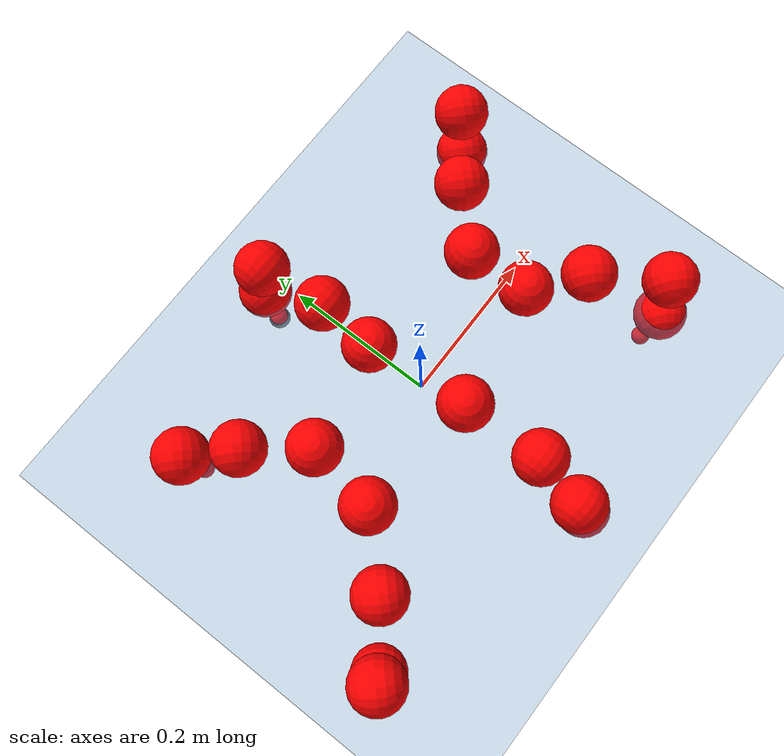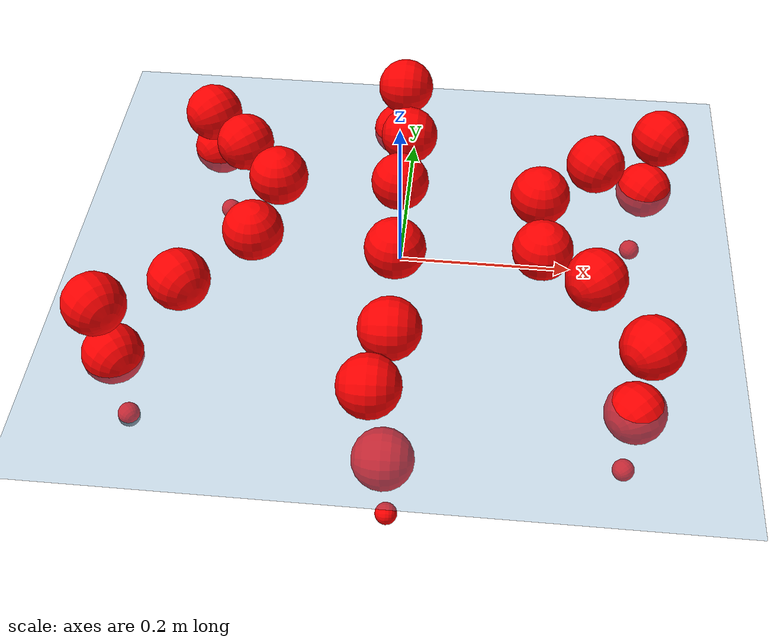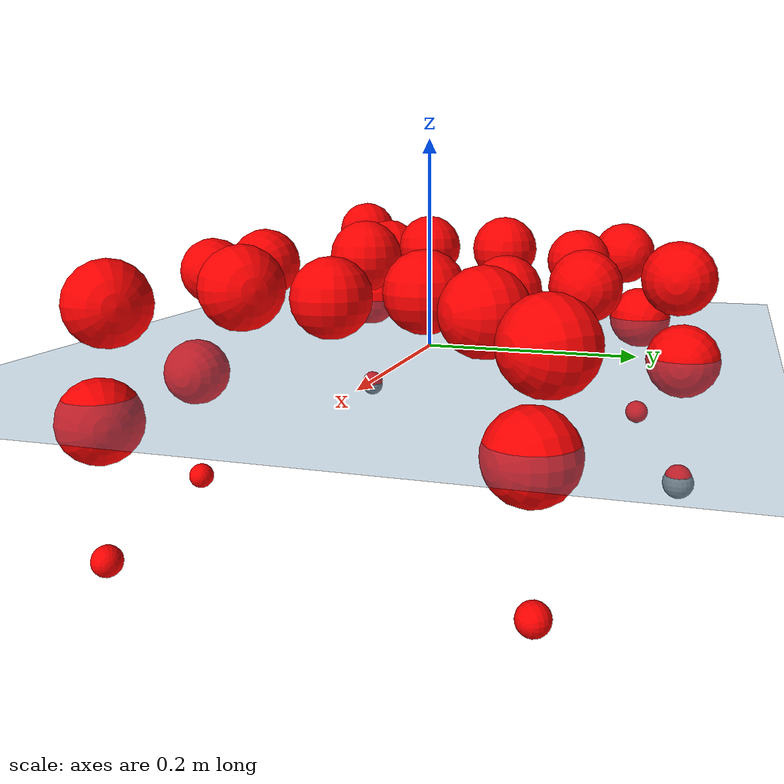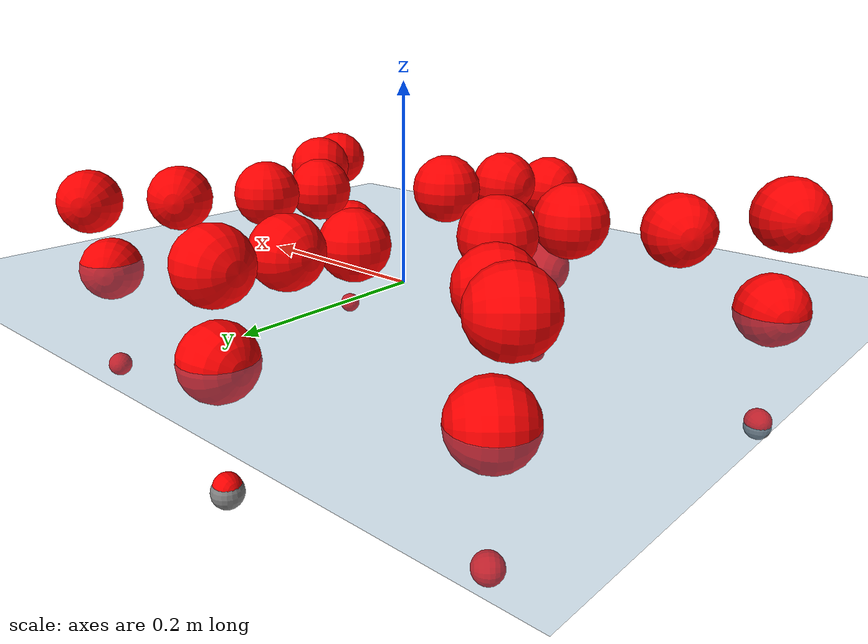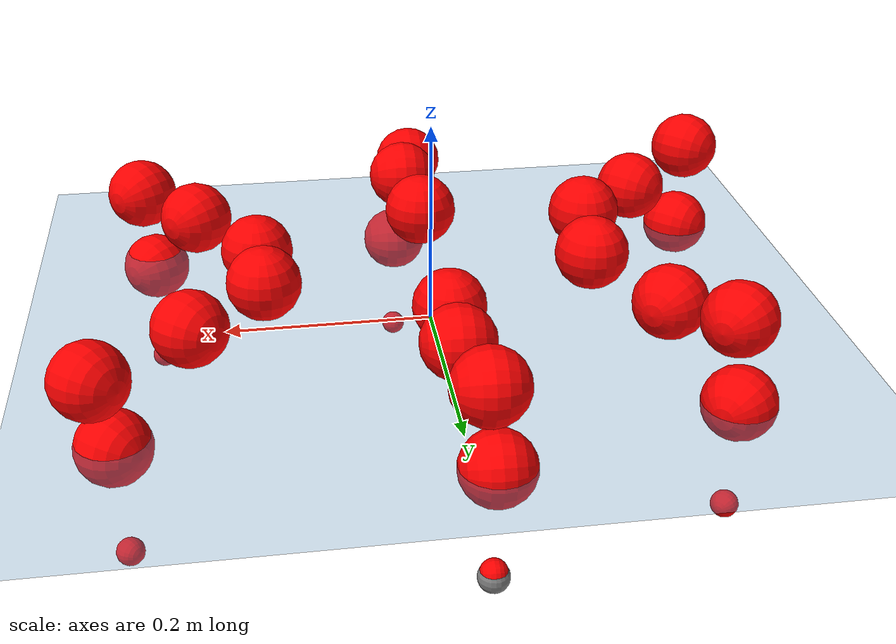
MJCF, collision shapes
<mujoco model="Golem">
  <compiler angle="radian" assetdir="assets" balanceinertia="true" inertiafromgeom="false"/>

  <option timestep="0.005" density="1.2" viscosity="2e-05"/>

  <size nkey="1"/>

  <visual>
    <quality shadowsize="8192"/>
    <map shadowclip="0.5"/>
  </visual>

  <default>
    <default class="/">
      <joint armature="0.01" damping="0.01" frictionloss="0.01"/>
      <geom contype="0" conaffinity="0" group="1" solref="-1000 -80"/>
      <site size="0.01 0.005 0.005" group="5"/>
      <general forcelimited="true" biastype="affine" gainprm="25" biasprm="0 -25 -0.5"/>
      <default class="visual">
        <geom type="mesh" group="2"/>
      </default>
      <default class="collision">
        <geom group="3"/>
      </default>
      <default class="foot">
        <geom size="0.01 0 0" condim="6" group="4" priority="1" solimp="0.015 1 0.01"/>
      </default>
      <default class="reward_collision_sphere">
        <geom group="5" rgba="1 0 0 1"/>
      </default>
    </default>
  </default>

  <asset>
    <texture type="skybox" colorspace="auto" name="//unnamed_texture_0" builtin="gradient" rgb1="0.95 0.95 0.95" rgb2="0.95 0.95 0.95" width="100" height="600"/>
    <texture type="2d" colorspace="auto" name="texplane" builtin="checker" rgb1="0.345 0.575 0.748" rgb2="0.345 0.575 0.748" markrgb="1 1 1" width="512" height="512"/>
    <material name="MatPlane" class="/" texture="texplane" texuniform="true" texrepeat="2 2" specular="0.9"/>
    <mesh name="body" class="/" file="body.stl" scale="0.001 0.001 0.001"/>
    <mesh name="coxa" class="/" file="coxa.stl" scale="0.001 0.001 0.001"/>
    <mesh name="femur" class="/" file="femur.stl" scale="0.001 0.001 0.001"/>
    <mesh name="tibia" class="/" file="tibia.stl" scale="0.001 0.001 0.001"/>
    <mesh name="tarsus" class="/" file="tarsus.stl" scale="0.001 0.001 0.001"/>
  </asset>

  <worldbody>
    <geom name="floor" class="/" size="100 100 0.125" type="plane" group="0" material="MatPlane"/>
    <light name="toplight_shadow" class="/" pos="0 0 5" dir="0.0990148 0.0990148 -0.990148" type="directional" ambient="0.04 0.04 0.04" diffuse="0.55 0.55 0.55" specular="0.12 0.12 0.12"/>
    <light name="toplight_fill" class="/" pos="0 0 5" dir="0.0990148 0.0990148 -0.990148" type="directional" castshadow="false" ambient="0.04 0.04 0.04" diffuse="0.3 0.3 0.3" specular="0.08 0.08 0.08"/>
    <body name="trunk" pos="0.010927 -0.00502369 0.0181256" quat="0.999999 -0.000552534 -0.000473824 -0.0014945">
      <inertial pos="-0.0112391 0.00218153 -0.0168575" quat="0.997535 0.0191665 -0.067121 -0.00720766" mass="1.85242" diaginertia="0.0155907 0.00182629 0.00253442"/>
      <joint name="//unnamed_joint_0" type="free"/>
      <geom name="//unnamed_geom_1" class="/" pos="0 0 0.0505925" quat="1 0 0 0" type="mesh" rgba="0.9 0.9 0.9 1" mesh="body"/>
      <site name="imu" class="/" pos="0.112216 0.0276359 0.0370959" size="0.00866935"/>
      <camera name="track" class="/" pos="0 -1.49847 0" quat="0.707107 0.707107 0 0" mode="trackcom"/>
      <camera name="ego_camera" class="/" pos="0.137938 0 0.0790508" quat="-0.5 -0.5 0.5 0.5"/>
      <body name="coxa_RR" pos="-0.194601 -0.066582 0.0646869" quat="0.384931 -0.00184568 -0.000708797 -0.922943">
        <inertial pos="0.00360993 0.0178902 -0.00584832" quat="0.999329 0.00660476 0.0119357 -0.0339797" mass="0.157184" diaginertia="0.0195825 0.00233706 0.00340599"/>
        <joint name="coxa_joint_RR" class="/" pos="0 0 0" axis="0.0933971 0.0309887 -0.995147" range="-3.18501 3.40768" armature="0.0139986" damping="0.0591594" frictionloss="0.00606778"/>
        <geom name="//unnamed_geom_2" class="/" type="mesh" rgba="0.2 0.2 0.2 1" mesh="coxa"/>
        <geom name="//unnamed_geom_3" class="reward_collision_sphere" size="0.0346774" pos="-0.0318319 0 0"/>
        <body name="femur_RR" pos="0.0689396 0.0013741 -0.0105554" quat="0.500159 -0.500225 0.499968 0.499648">
          <inertial pos="0.00761504 -0.0119241 0.0118589" quat="0.999893 -0.0105196 0.0101311 -0.00066228" mass="0.144998" diaginertia="0.0139963 0.00241487 0.0033622"/>
          <joint name="femur_joint_RR" class="/" pos="0 0 0" axis="-0.00551262 -0.0106941 -0.999928" stiffness="0.0450739" range="-3.30011 3.47783" armature="0.0147339" damping="0" frictionloss="0.00264928"/>
          <geom name="//unnamed_geom_4" class="/" type="mesh" rgba="0.9 0.9 0.9 1" mesh="femur"/>
          <geom name="//unnamed_geom_5" class="reward_collision_sphere" size="0.0346774"/>
          <body name="tibia_RR" pos="-0.0164973 -0.0943519 -0.0133849" quat="-0.00468411 0.999984 -0.0026299 -0.00176555">
            <inertial pos="0.0158577 0.0126094 -0.00237022" quat="0.997392 -0.000141324 0.0435458 0.0575545" mass="0.128861" diaginertia="0.0173172 0.00273519 0.00361443"/>
            <joint name="tibia_joint_RR" class="/" pos="0 0 0" axis="-0.0318065 0.0489456 0.998295" range="-2.78662 3.34075" armature="0.0141203" damping="0.0571719" frictionloss="0.0062538"/>
            <geom name="//unnamed_geom_6" class="/" type="mesh" rgba="0.2 0.2 0.2 1" mesh="tibia"/>
            <geom name="//unnamed_geom_7" class="reward_collision_sphere" size="0.0346774"/>
            <body name="tarsus_RR" pos="0.0898537 -0.00677151 0.00188582" quat="0.999992 0.000696534 -0.00399353 -8.97512e-05">
              <inertial pos="0.0579384 -0.0166501 0.0139193" quat="0.519126 0.505913 0.457991 0.514592" mass="0.114349" diaginertia="0.0128735 0.00184788 0.00275341"/>
              <joint name="tarsus_joint_RR" class="/" pos="0 0 0" axis="-0.00790595 0.0184955 0.999798" stiffness="0.0867346" range="-3.26211 3.10292" armature="0.00179089" damping="0" frictionloss="0.00223539"/>
              <geom name="//unnamed_geom_8" class="/" type="mesh" rgba="0.9 0.9 0.9 1" mesh="tarsus"/>
              <geom name="foot_1" class="foot" size="0.0130777" pos="0.118839 0 0" quat="0 -0.707107 0 0.707107"/>
              <geom name="//unnamed_geom_10" class="reward_collision_sphere" size="0.0346774"/>
              <geom name="//unnamed_geom_11" class="reward_collision_sphere" size="0.013004" pos="0.114064 0 0"/>
              <site name="foot_1" class="foot" pos="0.118839 0 0" quat="0 -0.707107 0 0.707107" size="0.00866935"/>
            </body>
          </body>
        </body>
      </body>
      <body name="coxa_RM" pos="-0.00960645 -0.0926003 0.0684378" quat="0.712258 0.00548194 -0.00166322 -0.701894">
        <inertial pos="0.0161528 0.00233926 0.0105651" quat="0.999508 0.018191 0.0255595 -0.000378196" mass="0.169518" diaginertia="0.0182329 0.00309987 0.00381458"/>
        <joint name="coxa_joint_RM" class="/" pos="0 0 0" axis="0.0245526 -0.0279821 -0.999307" stiffness="0.0536451" range="-2.76393 3.1939" armature="0.0119941" damping="0" frictionloss="0.00800229"/>
        <geom name="//unnamed_geom_12" class="/" type="mesh" rgba="0.2 0.2 0.2 1" mesh="coxa"/>
        <geom name="//unnamed_geom_13" class="reward_collision_sphere" size="0.0346774" pos="-0.0318319 0 0"/>
        <body name="femur_RM" pos="0.075241 0.00306067 -0.0096541" quat="0.503517 -0.499239 0.49353 0.503646">
          <inertial pos="-0.0108844 0.0102381 -0.0100094" quat="0.996697 -0.0651203 0.0480105 0.00706195" mass="0.103323" diaginertia="0.0110979 0.00226922 0.00266895"/>
          <joint name="femur_joint_RM" class="/" pos="0 0 0" axis="-0.00358737 0.0207393 -0.999778" stiffness="0.0905806" range="-3.06434 3.19208" armature="0.00552602" damping="0.0289942" frictionloss="0.0130331"/>
          <geom name="//unnamed_geom_14" class="/" type="mesh" rgba="0.9 0.9 0.9 1" mesh="femur"/>
          <geom name="//unnamed_geom_15" class="reward_collision_sphere" size="0.0346774"/>
          <body name="tibia_RM" pos="0.0116395 -0.0674549 -0.0162347" quat="-0.00203248 0.999995 0.00255794 -0.00044633">
            <inertial pos="0.00916259 -0.0195211 -0.00461211" quat="0.999275 0.0291882 -0.0234636 0.00690392" mass="0.10309" diaginertia="0.00990055 0.00185588 0.0020341"/>
            <joint name="tibia_joint_RM" class="/" pos="0 0 0" axis="-0.0347125 -0.0511677 0.998087" range="-3.41388 3.53325" armature="0.0029885" damping="0.095359" frictionloss="0.00659824"/>
            <geom name="//unnamed_geom_16" class="/" type="mesh" rgba="0.2 0.2 0.2 1" mesh="tibia"/>
            <geom name="//unnamed_geom_17" class="reward_collision_sphere" size="0.0346774"/>
            <body name="tarsus_RM" pos="0.106955 0.0168082 -0.0119031" quat="0.999975 0.00240028 -0.00203035 -0.00631817">
              <inertial pos="0.0535363 -0.0183832 -0.00962059" quat="0.505106 0.490509 0.496408 0.507787" mass="0.189154" diaginertia="0.0163799 0.0025158 0.00413785"/>
              <joint name="tarsus_joint_RM" class="/" pos="0 0 0" axis="-0.0182599 -0.0584753 0.998122" stiffness="0.0250629" range="-3.06622 3.28302" armature="0.00351572" damping="0" frictionloss="0.00806897"/>
              <geom name="//unnamed_geom_18" class="/" type="mesh" rgba="0.9 0.9 0.9 1" mesh="tarsus"/>
              <geom name="foot_2" class="foot" size="0.00545006" pos="0.118839 0 0" quat="0 -0.707107 0 0.707107"/>
              <geom name="//unnamed_geom_20" class="reward_collision_sphere" size="0.0346774"/>
              <geom name="//unnamed_geom_21" class="reward_collision_sphere" size="0.013004" pos="0.114064 0 0"/>
              <site name="foot_2" class="foot" pos="0.118839 0 0" quat="0 -0.707107 0 0.707107" size="0.00866935"/>
            </body>
          </body>
        </body>
      </body>
      <body name="coxa_RF" pos="0.175996 -0.0527573 0.049809" quat="0.923575 0.0051739 -0.00387101 -0.383363">
        <inertial pos="0.0167422 -0.00789843 -0.0153429" quat="0.998136 0.0262212 0.0406547 0.0372114" mass="0.0873026" diaginertia="0.0118086 0.00222099 0.00271901"/>
        <joint name="coxa_joint_RF" class="/" pos="0 0 0" axis="-0.0604624 0.00754961 -0.998142" stiffness="0.0337334" range="-2.89016 3.13499" armature="0.015893" damping="0" frictionloss="0.00308711"/>
        <geom name="//unnamed_geom_22" class="/" type="mesh" rgba="0.2 0.2 0.2 1" mesh="coxa"/>
        <geom name="//unnamed_geom_23" class="reward_collision_sphere" size="0.0346774" pos="-0.0318319 0 0"/>
        <body name="femur_RF" pos="0.0454869 0.00453561 0.0131677" quat="0.504974 -0.500318 0.493608 0.501034">
          <inertial pos="0.0066722 0.010891 -0.00620836" quat="0.999536 -0.011262 -0.0274799 -0.00674264" mass="0.193389" diaginertia="0.0129957 0.00325432 0.00441546"/>
          <joint name="femur_joint_RF" class="/" pos="0 0 0" axis="-0.0142316 0.0214241 -0.999669" stiffness="0.0926051" range="-3.3416 3.48938" armature="0.0162095" damping="0" frictionloss="0.0168121"/>
          <geom name="//unnamed_geom_24" class="/" type="mesh" rgba="0.9 0.9 0.9 1" mesh="femur"/>
          <geom name="//unnamed_geom_25" class="reward_collision_sphere" size="0.0346774"/>
          <body name="tibia_RF" pos="0.00916779 -0.0988667 -0.018293" quat="0.000798466 0.999998 -0.000545438 0.0017741">
            <inertial pos="0.016929 0.00788518 0.00150184" quat="0.999717 -0.021177 -0.000587186 0.0107923" mass="0.141147" diaginertia="0.018561 0.00273552 0.00354842"/>
            <joint name="tibia_joint_RF" class="/" pos="0 0 0" axis="0.0155459 0.0571045 0.998247" stiffness="0.0387549" range="-3.39822 3.03502" armature="0.010329" damping="0.0879304" frictionloss="0.00329018"/>
            <geom name="//unnamed_geom_26" class="/" type="mesh" rgba="0.2 0.2 0.2 1" mesh="tibia"/>
            <geom name="//unnamed_geom_27" class="reward_collision_sphere" size="0.0346774"/>
            <body name="tarsus_RF" pos="0.0938167 0.00630888 0.0168258" quat="0.999975 0.00568179 -0.00182137 -0.00366146">
              <inertial pos="0.0798724 0.0123597 0.00417027" quat="0.577142 0.452038 0.495597 0.465782" mass="0.134904" diaginertia="0.0156042 0.0022322 0.00433305"/>
              <joint name="tarsus_joint_RF" class="/" pos="0 0 0" axis="-0.0260004 0.0542016 0.998191" stiffness="0.00256737" range="-2.97736 3.09411" armature="0.0158138" damping="0.00226987" frictionloss="0.0155989"/>
              <geom name="//unnamed_geom_28" class="/" type="mesh" rgba="0.9 0.9 0.9 1" mesh="tarsus"/>
              <geom name="foot_3" class="foot" size="0.00864074" pos="0.118839 0 0" quat="0 -0.707107 0 0.707107"/>
              <geom name="//unnamed_geom_30" class="reward_collision_sphere" size="0.0346774"/>
              <geom name="//unnamed_geom_31" class="reward_collision_sphere" size="0.013004" pos="0.114064 0 0"/>
              <site name="foot_3" class="foot" pos="0.118839 0 0" quat="0 -0.707107 0 0.707107" size="0.00866935"/>
            </body>
          </body>
        </body>
      </body>
      <body name="coxa_LR" pos="-0.180216 0.0689317 0.0656013" quat="0.382899 -0.0011989 0.0037886 0.923782">
        <inertial pos="-0.0099487 0.00089995 0.00482286" quat="0.996019 -0.0163558 -0.085481 0.0192556" mass="0.120098" diaginertia="0.0129454 0.0016109 0.00293582"/>
        <joint name="coxa_joint_LR" class="/" pos="0 0 0" axis="0.00846747 -0.0527518 -0.998572" range="-3.06424 2.91777" armature="0.00138547" damping="0" frictionloss="0.00447391"/>
        <geom name="//unnamed_geom_32" class="/" type="mesh" rgba="0.2 0.2 0.2 1" mesh="coxa"/>
        <geom name="//unnamed_geom_33" class="reward_collision_sphere" size="0.0346774" pos="-0.0318319 0 0"/>
        <body name="femur_LR" pos="0.0588012 -0.0131225 -0.0154005" quat="0.500278 -0.499658 0.504959 0.495056">
          <inertial pos="0.0158751 0.0175552 -0.017544" quat="0.99999 0.00381152 0.00185626 -0.00144053" mass="0.0870816" diaginertia="0.00980696 0.00159709 0.0029414"/>
          <joint name="femur_joint_LR" class="/" pos="0 0 0" axis="0.0435101 -0.079359 0.995896" stiffness="0.0571588" range="-2.86266 3.43083" armature="0" damping="0" frictionloss="0.0155079"/>
          <geom name="//unnamed_geom_34" class="/" type="mesh" rgba="0.9 0.9 0.9 1" mesh="femur"/>
          <geom name="//unnamed_geom_35" class="reward_collision_sphere" size="0.0346774"/>
          <body name="tibia_LR" pos="-0.00571577 -0.066325 0.00195908" quat="0.00197448 0.999997 1.0951e-05 0.00142248">
            <inertial pos="0.00106949 0.0174878 -0.00275921" quat="0.99831 0.0374767 -0.0422011 -0.0138188" mass="0.181179" diaginertia="0.0183022 0.00235748 0.00444984"/>
            <joint name="tibia_joint_LR" class="/" pos="0 0 0" axis="0.0840166 -0.00281659 -0.99646" stiffness="0.0837546" range="-3.1884 3.47314" armature="0.00762375" damping="0" frictionloss="0.00269141"/>
            <geom name="//unnamed_geom_36" class="/" type="mesh" rgba="0.2 0.2 0.2 1" mesh="tibia"/>
            <geom name="//unnamed_geom_37" class="reward_collision_sphere" size="0.0346774"/>
            <body name="tarsus_LR" pos="0.0748399 0.0162836 0.0129489" quat="0.999977 -0.00113297 0.00254253 0.00614971">
              <inertial pos="0.0741604 -0.0108099 0.0148461" quat="0.482544 0.51474 0.503225 0.498957" mass="0.14655" diaginertia="0.012344 0.00192295 0.00268534"/>
              <joint name="tarsus_joint_LR" class="/" pos="0 0 0" axis="0.00855309 -0.0202673 -0.999758" stiffness="0.0295766" range="-2.84494 3.25826" armature="0.0151744" damping="0.0236076" frictionloss="0.0106054"/>
              <geom name="//unnamed_geom_38" class="/" type="mesh" rgba="0.9 0.9 0.9 1" mesh="tarsus"/>
              <geom name="foot_4" class="foot" size="0.00864073" pos="0.118839 0 0" quat="0.707107 0 -0.707107 0"/>
              <geom name="//unnamed_geom_40" class="reward_collision_sphere" size="0.0346774"/>
              <geom name="//unnamed_geom_41" class="reward_collision_sphere" size="0.013004" pos="0.114064 0 0"/>
              <site name="foot_4" class="foot" pos="0.118839 0 0" quat="0.707107 0 -0.707107 0" size="0.00866935"/>
            </body>
          </body>
        </body>
      </body>
      <body name="coxa_LM" pos="-0.0177676 0.111349 0.0378903" quat="0.708194 -0.0013139 0.00054527 0.706016">
        <inertial pos="-0.0130252 -0.00952462 -0.0101673" quat="0.998277 -0.0398855 0.0332616 -0.027301" mass="0.165976" diaginertia="0.011537 0.00285274 0.00293121"/>
        <joint name="coxa_joint_LM" class="/" pos="0 0 0" axis="-0.0811517 0.0238178 -0.996417" stiffness="0.0062104" range="-3.35764 2.76495" armature="0.00851109" damping="0" frictionloss="0.0101224"/>
        <geom name="//unnamed_geom_42" class="/" type="mesh" rgba="0.2 0.2 0.2 1" mesh="coxa"/>
        <geom name="//unnamed_geom_43" class="reward_collision_sphere" size="0.0346774" pos="-0.0318319 0 0"/>
        <body name="femur_LM" pos="0.0445395 -0.00417582 0.00822216" quat="0.504141 -0.495282 0.50383 0.496682">
          <inertial pos="-0.0143161 0.00677773 0.0137104" quat="0.999824 0.0124034 -0.0113792 0.00831429" mass="0.0824352" diaginertia="0.0119638 0.00187762 0.00203443"/>
          <joint name="femur_joint_LM" class="/" pos="0 0 0" axis="-0.0735879 0.00698331 0.997264" range="-2.79462 3.48196" armature="0.00505726" damping="0" frictionloss="0.00270158"/>
          <geom name="//unnamed_geom_44" class="/" type="mesh" rgba="0.9 0.9 0.9 1" mesh="femur"/>
          <geom name="//unnamed_geom_45" class="reward_collision_sphere" size="0.0346774"/>
          <body name="tibia_LM" pos="-0.00923944 -0.0836282 0.0135698" quat="-6.18838e-05 0.99999 -0.00445884 0.000736646">
            <inertial pos="-0.0136975 -0.012032 -0.00410459" quat="0.998773 -0.00239125 -0.0454228 0.0195731" mass="0.0955266" diaginertia="0.0118349 0.00245567 0.00219271"/>
            <joint name="tibia_joint_LM" class="/" pos="0 0 0" axis="-0.0575628 0.0368986 -0.99766" stiffness="0.0984556" range="-3.049 3.17043" armature="0.0156986" damping="0.0573282" frictionloss="0.0104387"/>
            <geom name="//unnamed_geom_46" class="/" type="mesh" rgba="0.2 0.2 0.2 1" mesh="tibia"/>
            <geom name="//unnamed_geom_47" class="reward_collision_sphere" size="0.0346774"/>
            <body name="tarsus_LM" pos="0.077956 0.00561781 -0.00739948" quat="1 -0.000118309 -0.000321493 -0.000228052">
              <inertial pos="0.0560439 0.00551898 -0.0153176" quat="0.493504 0.53983 0.503907 0.459473" mass="0.148039" diaginertia="0.0165376 0.00190748 0.00320054"/>
              <joint name="tarsus_joint_LM" class="/" pos="0 0 0" axis="0.0156086 -0.0162821 -0.999746" stiffness="0.0683549" range="-2.95295 3.05645" armature="0.0118436" damping="0" frictionloss="0.00922205"/>
              <geom name="//unnamed_geom_48" class="/" type="mesh" rgba="0.9 0.9 0.9 1" mesh="tarsus"/>
              <geom name="foot_5" class="foot" size="0.0149389" pos="0.118839 0 0" quat="0.707107 0 -0.707107 0"/>
              <geom name="//unnamed_geom_50" class="reward_collision_sphere" size="0.0346774"/>
              <geom name="//unnamed_geom_51" class="reward_collision_sphere" size="0.013004" pos="0.114064 0 0"/>
              <site name="foot_5" class="foot" pos="0.118839 0 0" quat="0.707107 0 -0.707107 0" size="0.00866935"/>
            </body>
          </body>
        </body>
      </body>
      <body name="coxa_LF" pos="0.171118 0.0723542 0.0575671" quat="0.921528 0.00610607 -0.00133779 0.388261">
        <inertial pos="0.00330496 0.000146834 -0.0153019" quat="0.999083 -0.0321118 0.0165211 -0.0230195" mass="0.142571" diaginertia="0.0127144 0.00332867 0.00357425"/>
        <joint name="coxa_joint_LF" class="/" pos="0 0 0" axis="0.0297164 0.0733869 -0.996861" stiffness="0.0264117" range="-3.28432 3.018" armature="0.00635975" damping="0.0121146" frictionloss="0.0153914"/>
        <geom name="//unnamed_geom_52" class="/" type="mesh" rgba="0.2 0.2 0.2 1" mesh="coxa"/>
        <geom name="//unnamed_geom_53" class="reward_collision_sphere" size="0.0346774" pos="-0.0318319 0 0"/>
        <body name="femur_LF" pos="0.0609738 -0.0013213 -0.00446494" quat="0.501512 -0.500959 0.495467 0.502034">
          <inertial pos="-0.00207467 -0.00500897 -0.0173015" quat="0.997637 0.0423303 0.0169245 0.0514012" mass="0.100036" diaginertia="0.0162671 0.00265783 0.0030675"/>
          <joint name="femur_joint_LF" class="/" pos="0 0 0" axis="0.0717214 -0.0171176 0.997278" stiffness="0.00106409" range="-3.26217 3.17293" armature="0.0104088" damping="0.00990529" frictionloss="0.00156979"/>
          <geom name="//unnamed_geom_54" class="/" type="mesh" rgba="0.9 0.9 0.9 1" mesh="femur"/>
          <geom name="//unnamed_geom_55" class="reward_collision_sphere" size="0.0346774"/>
          <body name="tibia_LF" pos="0.00719818 -0.100526 -0.0156534" quat="0.00803284 0.99996 0.0039482 0.000813928">
            <inertial pos="-0.00696482 0.00570789 0.0150119" quat="0.996088 0.0448827 -0.0366327 -0.0667304" mass="0.114783" diaginertia="0.00950706 0.00224979 0.00295796"/>
            <joint name="tibia_joint_LF" class="/" pos="0 0 0" axis="0.00133958 0.0023055 -0.999996" stiffness="0.0421905" range="-3.52909 2.91972" armature="0.011799" damping="0" frictionloss="0.00850548"/>
            <geom name="//unnamed_geom_56" class="/" type="mesh" rgba="0.2 0.2 0.2 1" mesh="tibia"/>
            <geom name="//unnamed_geom_57" class="reward_collision_sphere" size="0.0346774"/>
            <body name="tarsus_LF" pos="0.0765004 -0.0156634 0.00215288" quat="0.999983 -8.40157e-05 0.00492294 0.00304791">
              <inertial pos="0.0821137 0.00946299 -0.00367324" quat="0.494067 0.499053 0.502164 0.504653" mass="0.177281" diaginertia="0.0181718 0.00322179 0.00281533"/>
              <joint name="tarsus_joint_LF" class="/" pos="0 0 0" axis="0.0356147 -0.0741446 -0.996611" stiffness="0.0715809" range="-3.09041 3.4483" armature="0.000704704" damping="0" frictionloss="0.000407136"/>
              <geom name="//unnamed_geom_58" class="/" type="mesh" rgba="0.9 0.9 0.9 1" mesh="tarsus"/>
              <geom name="foot_6" class="foot" size="0.00593951" pos="0.118839 0 0" quat="0.707107 0 -0.707107 0"/>
              <geom name="//unnamed_geom_60" class="reward_collision_sphere" size="0.0346774"/>
              <geom name="//unnamed_geom_61" class="reward_collision_sphere" size="0.013004" pos="0.114064 0 0"/>
              <site name="foot_6" class="foot" pos="0.118839 0 0" quat="0.707107 0 -0.707107 0" size="0.00866935"/>
            </body>
          </body>
        </body>
      </body>
    </body>
  </worldbody>

  <contact>
    <pair class="/" geom1="floor" geom2="foot_1" name="//unnamed_contact_0"/>
    <pair class="/" geom1="floor" geom2="foot_2" name="//unnamed_contact_1"/>
    <pair class="/" geom1="floor" geom2="foot_3" name="//unnamed_contact_2"/>
    <pair class="/" geom1="floor" geom2="foot_4" name="//unnamed_contact_3"/>
    <pair class="/" geom1="floor" geom2="foot_5" name="//unnamed_contact_4"/>
    <pair class="/" geom1="floor" geom2="foot_6" name="//unnamed_contact_5"/>
  </contact>

  <actuator>
    <general name="coxa_joint_RR" class="/" joint="coxa_joint_RR" forcerange="-3.25727 3.25727" gainprm="17.3079" biasprm="0 -17.3079 -0.366308"/>
    <general name="femur_joint_RR" class="/" joint="femur_joint_RR" forcerange="-2.92267 2.92267" gainprm="17.3079" biasprm="0 -17.3079 -0.366308"/>
    <general name="tibia_joint_RR" class="/" joint="tibia_joint_RR" forcerange="-9.82766 9.82766" gainprm="17.3079" biasprm="0 -17.3079 -0.366308"/>
    <general name="tarsus_joint_RR" class="/" joint="tarsus_joint_RR" forcerange="-10.0058 10.0058" gainprm="17.3079" biasprm="0 -17.3079 -0.366308"/>
    <general name="coxa_joint_RM" class="/" joint="coxa_joint_RM" forcerange="-10.4231 10.4231" gainprm="17.3079" biasprm="0 -17.3079 -0.366308"/>
    <general name="femur_joint_RM" class="/" joint="femur_joint_RM" forcerange="-4.65224 4.65224" gainprm="17.3079" biasprm="0 -17.3079 -0.366308"/>
    <general name="tibia_joint_RM" class="/" joint="tibia_joint_RM" forcerange="-7.12828 7.12828" gainprm="17.3079" biasprm="0 -17.3079 -0.366308"/>
    <general name="tarsus_joint_RM" class="/" joint="tarsus_joint_RM" forcerange="-7.42698 7.42698" gainprm="17.3079" biasprm="0 -17.3079 -0.366308"/>
    <general name="coxa_joint_RF" class="/" joint="coxa_joint_RF" forcerange="-5.00725 5.00725" gainprm="17.3079" biasprm="0 -17.3079 -0.366308"/>
    <general name="femur_joint_RF" class="/" joint="femur_joint_RF" forcerange="-1.74356 1.74356" gainprm="17.3079" biasprm="0 -17.3079 -0.366308"/>
    <general name="tibia_joint_RF" class="/" joint="tibia_joint_RF" forcerange="-2.15774 2.15774" gainprm="17.3079" biasprm="0 -17.3079 -0.366308"/>
    <general name="tarsus_joint_RF" class="/" joint="tarsus_joint_RF" forcerange="-2.34598 2.34598" gainprm="17.3079" biasprm="0 -17.3079 -0.366308"/>
    <general name="coxa_joint_LR" class="/" joint="coxa_joint_LR" forcerange="-5.86494 5.86494" gainprm="17.3079" biasprm="0 -17.3079 -0.366308"/>
    <general name="femur_joint_LR" class="/" joint="femur_joint_LR" forcerange="-5.50345 5.50345" gainprm="17.3079" biasprm="0 -17.3079 -0.366308"/>
    <general name="tibia_joint_LR" class="/" joint="tibia_joint_LR" forcerange="-1.84293 1.84293" gainprm="17.3079" biasprm="0 -17.3079 -0.366308"/>
    <general name="tarsus_joint_LR" class="/" joint="tarsus_joint_LR" forcerange="-2.1598 2.1598" gainprm="17.3079" biasprm="0 -17.3079 -0.366308"/>
    <general name="coxa_joint_LM" class="/" joint="coxa_joint_LM" forcerange="-5.2073 5.2073" gainprm="17.3079" biasprm="0 -17.3079 -0.366308"/>
    <general name="femur_joint_LM" class="/" joint="femur_joint_LM" forcerange="-7.71757 7.71757" gainprm="17.3079" biasprm="0 -17.3079 -0.366308"/>
    <general name="tibia_joint_LM" class="/" joint="tibia_joint_LM" forcerange="-6.35552 6.35552" gainprm="17.3079" biasprm="0 -17.3079 -0.366308"/>
    <general name="tarsus_joint_LM" class="/" joint="tarsus_joint_LM" forcerange="-8.74321 8.74321" gainprm="17.3079" biasprm="0 -17.3079 -0.366308"/>
    <general name="coxa_joint_LF" class="/" joint="coxa_joint_LF" forcerange="-6.87881 6.87881" gainprm="17.3079" biasprm="0 -17.3079 -0.366308"/>
    <general name="femur_joint_LF" class="/" joint="femur_joint_LF" forcerange="-2.41816 2.41816" gainprm="17.3079" biasprm="0 -17.3079 -0.366308"/>
    <general name="tibia_joint_LF" class="/" joint="tibia_joint_LF" forcerange="-2.59536 2.59536" gainprm="17.3079" biasprm="0 -17.3079 -0.366308"/>
    <general name="tarsus_joint_LF" class="/" joint="tarsus_joint_LF" forcerange="-4.97308 4.97308" gainprm="17.3079" biasprm="0 -17.3079 -0.366308"/>
  </actuator>

  <sensor>
    <gyro site="imu" name="imu_angular_velocity"/>
    <velocimeter site="imu" name="imu_linear_velocity"/>
    <framelinvel objtype="site" objname="foot_1" name="foot_1_global_linear_velocity"/>
    <framelinvel objtype="site" objname="foot_2" name="foot_2_global_linear_velocity"/>
    <framelinvel objtype="site" objname="foot_3" name="foot_3_global_linear_velocity"/>
    <framelinvel objtype="site" objname="foot_4" name="foot_4_global_linear_velocity"/>
    <framelinvel objtype="site" objname="foot_5" name="foot_5_global_linear_velocity"/>
    <framelinvel objtype="site" objname="foot_6" name="foot_6_global_linear_velocity"/>
  </sensor>

  <keyframe>
    <key name="home" qpos="0 0 0.1457 1 0 0 0 0 0 0 0 0 0 0 0 0 0 0 0 0 0 0 0 0 0 0 0 0 0 0 0"/>
  </keyframe>
</mujoco>
